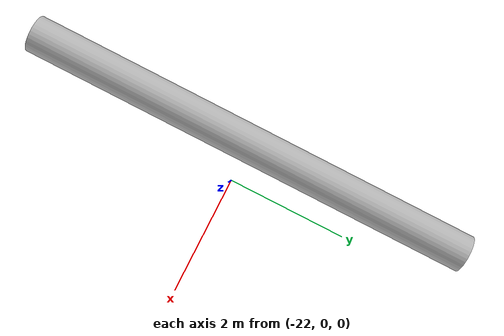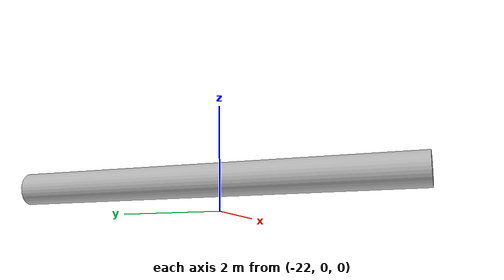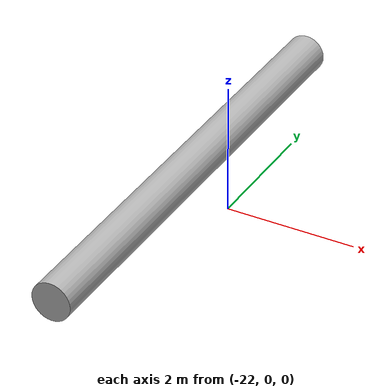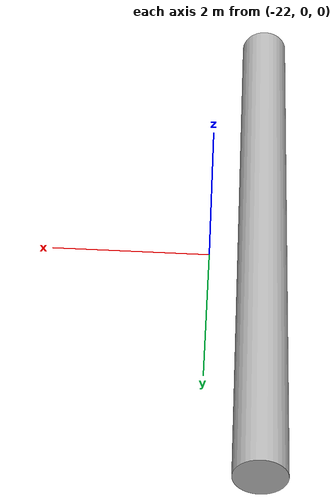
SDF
<?xml version="1.0" ?>
<sdf version="1.6">
    <model name="OFICIAL_TRAVE_ROSA">
        <pose>0 0 0.5 0 0 0</pose>
        <static>true</static>
        <link name="link">
            <collision name="collision">
                <geometry>
                    <mesh>
                        <uri>model://OFICIAL_TRAVE_ROSA/meshes/RS2.obj</uri>
                        <scale>3 3 3</scale>
                    </mesh>
                </geometry>
            </collision>
            <visual name="visual">
                <geometry>
                    <mesh>
                        <uri>model://OFICIAL_TRAVE_ROSA/meshes/RS2.obj</uri>
                        <scale>3 3 3</scale>
                    </mesh>
                </geometry>
            </visual>
        </link>
    </model>
</sdf>
